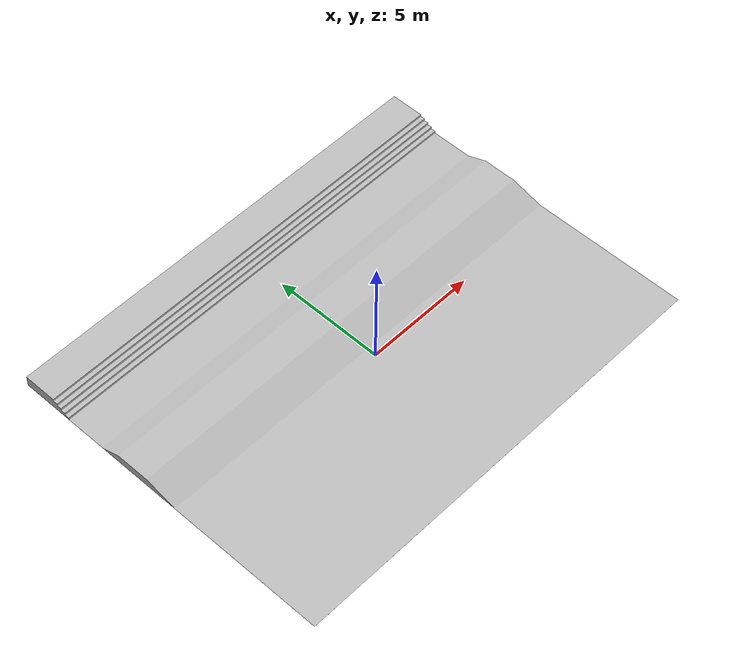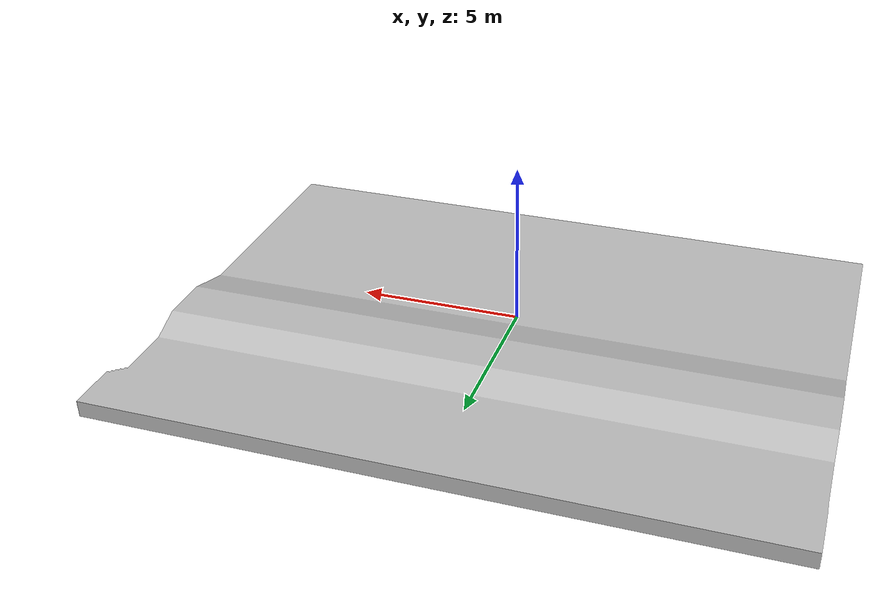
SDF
<?xml version="1.0" ?>
<sdf version='1.6'>
  <model name='Part1'>
    <link name='Part1'>
      <pose frame=''>0 0 0 0 -0 0</pose>
      <inertial>
        <pose frame=''>0.4694 0.19289 0.25 0 -0 0</pose>
        <mass>12.7</mass>
        <inertia>
          <ixx>2.44379</ixx>
          <ixy>1.33795</ixy>
          <ixz>9.94811e-16</ixz>
          <iyy>3.64369</iyy>
          <iyz>3.03272e-16</iyz>
          <izz>5.55832</izz>
        </inertia>
      </inertial>
      <collision name='Part1_collision'>
        <pose frame=''>0 0 0 1.5708 -0 0</pose>
        <geometry>
          <mesh>
            <scale>1 1 1</scale>
            <uri>model://meshes/Part1.STL</uri>
          </mesh>
        </geometry>
      </collision>
      <visual name='Part1_visual'>
        <pose frame=''>0 0 0 1.5708 -0 0</pose>
        <geometry>
          <mesh>
            <scale>1 1 1</scale>
            <uri>model://meshes/Part1.STL</uri>
          </mesh>
        </geometry>
      </visual>
    </link>
  </model>
</sdf>
